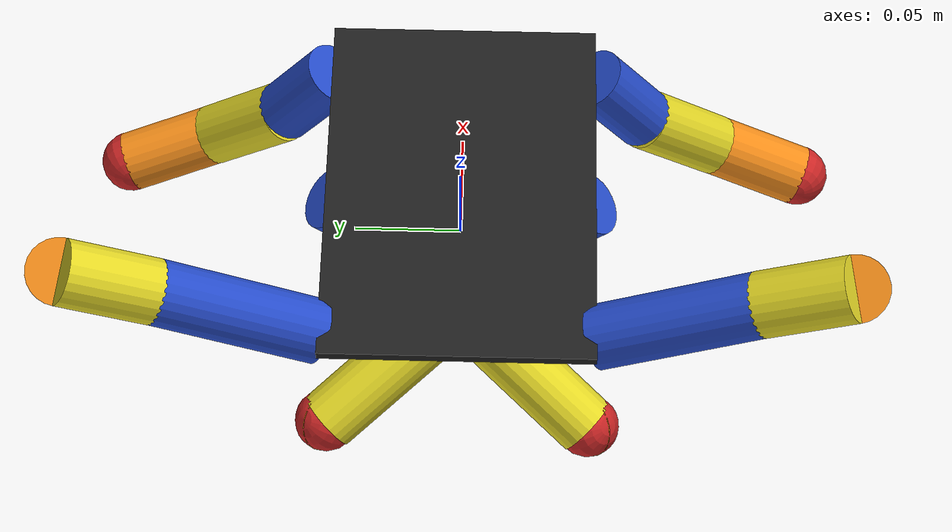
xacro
<?xml version="1.0"?>
<robot name="multi_legged_robot" xmlns:xacro="http://ros.org/wiki/xacro">

  <xacro:include filename="$(find multi_legged_description)/urdf/base/base.urdf.xacro"/>
  <xacro:include filename="$(find multi_legged_description)/urdf/leg/leg.urdf.xacro"/>
  <xacro:include filename="$(find multi_legged_description)/urdf/params/robot6.xacro"/>

  <!-- ===============  Link & Joint =============== -->
  <!-- Base -->
  <link name="base_footprint"/>
  <xacro:base parent="base_footprint"
              length="${body_length}"
              width="${body_width}"
              height="${body_height}"
              rho="${body_rho}">
  <!-- respawn point -->
	<origin xyz="0 0 ${body_height+base_clause_radius/2+LM_tibia_length+appendix_radius+0.01}"/>
  </xacro:base>

  <!-- LEG -->
  <xacro:leg prefix="LF" parent="base_link" origin_xyz="${body_length*2/5} ${body_width/2} ${-body_height/2-base_clause_radius/2}" origin_rpy="0.0 0.0 ${M_PI/2}"
             base_clause_radius="${base_clause_radius}" base_clause_length="${LF_base_clause_length}" base_clause_rpy="${LF_base_clause_rpy}" base_clause_rho="${base_clause_rho}" base_clause_torque="${base_clause_torque}" base_clause_velocity="${base_clause_velocity}"
             thigh_radius="${thigh_radius}" thigh_length="${LF_thigh_length}" thigh_rpy="${LF_thigh_rpy}" thigh_rho="${thigh_rho}" thigh_torque="${thigh_torque}" thigh_velocity="${thigh_velocity}"
             tibia_radius="${tibia_radius}" tibia_length="${LF_tibia_length}" tibia_rpy="${LF_tibia_rpy}" tibia_rho="${tibia_rho}" tibia_torque="${tibia_torque}" tibia_velocity="${tibia_velocity}"
             appendix_radius="${appendix_radius}" appendix_rho="${appendix_rho}"/>
  <xacro:leg prefix="LM" parent="base_link" origin_xyz="0.0 ${body_width/2} ${-body_height/2-base_clause_radius/2}" origin_rpy="0.0 0.0 ${M_PI/2}"
             base_clause_radius="${base_clause_radius}" base_clause_length="${LM_base_clause_length}" base_clause_rpy="${LM_base_clause_rpy}" base_clause_rho="${base_clause_rho}" base_clause_torque="${base_clause_torque}" base_clause_velocity="${base_clause_velocity}"
             thigh_radius="${thigh_radius}" thigh_length="${LM_thigh_length}" thigh_rpy="${LM_thigh_rpy}" thigh_rho="${thigh_rho}" thigh_torque="${thigh_torque}" thigh_velocity="${thigh_velocity}"
             tibia_radius="${tibia_radius}" tibia_length="${LM_tibia_length}" tibia_rpy="${LM_tibia_rpy}" tibia_rho="${tibia_rho}" tibia_torque="${tibia_torque}" tibia_velocity="${tibia_velocity}"
             appendix_radius="${appendix_radius}" appendix_rho="${appendix_rho}"/>
	<xacro:leg prefix="LH" parent="base_link" origin_xyz="${-body_length*2/5} ${body_width/2} ${-body_height/2-base_clause_radius/2}" origin_rpy="0.0 0.0 ${M_PI/2}"
             base_clause_radius="${base_clause_radius}" base_clause_length="${LH_base_clause_length}" base_clause_rpy="${LH_base_clause_rpy}" base_clause_rho="${base_clause_rho}" base_clause_torque="${base_clause_torque}" base_clause_velocity="${base_clause_velocity}"
             thigh_radius="${thigh_radius}" thigh_length="${LH_thigh_length}" thigh_rpy="${LH_thigh_rpy}" thigh_rho="${thigh_rho}" thigh_torque="${thigh_torque}" thigh_velocity="${thigh_velocity}"
             tibia_radius="${tibia_radius}" tibia_length="${LH_tibia_length}" tibia_rpy="${LH_tibia_rpy}" tibia_rho="${tibia_rho}" tibia_torque="${tibia_torque}" tibia_velocity="${tibia_velocity}"
             appendix_radius="${appendix_radius}" appendix_rho="${appendix_rho}"/>

  <xacro:leg prefix="RF" parent="base_link" origin_xyz="${body_length*2/5} ${-body_width/2} ${-body_height/2-base_clause_radius/2}" origin_rpy="0.0 0.0 ${-M_PI/2}"
             base_clause_radius="${base_clause_radius}" base_clause_length="${RF_base_clause_length}" base_clause_rpy="${RF_base_clause_rpy}" base_clause_rho="${base_clause_rho}" base_clause_torque="${base_clause_torque}" base_clause_velocity="${base_clause_velocity}"
             thigh_radius="${thigh_radius}" thigh_length="${RF_thigh_length}" thigh_rpy="${RF_thigh_rpy}" thigh_rho="${thigh_rho}" thigh_torque="${thigh_torque}" thigh_velocity="${thigh_velocity}"
             tibia_radius="${tibia_radius}" tibia_length="${RF_tibia_length}" tibia_rpy="${RF_tibia_rpy}" tibia_rho="${tibia_rho}" tibia_torque="${tibia_torque}" tibia_velocity="${tibia_velocity}"
             appendix_radius="${appendix_radius}" appendix_rho="${appendix_rho}"/>
  <xacro:leg prefix="RM" parent="base_link" origin_xyz="0.0 ${-body_width/2} ${-body_height/2-base_clause_radius/2}" origin_rpy="0.0 0.0 ${-M_PI/2}"
             base_clause_radius="${base_clause_radius}" base_clause_length="${RM_base_clause_length}" base_clause_rpy="${RM_base_clause_rpy}" base_clause_rho="${base_clause_rho}" base_clause_torque="${base_clause_torque}" base_clause_velocity="${base_clause_velocity}"
             thigh_radius="${thigh_radius}" thigh_length="${RM_thigh_length}" thigh_rpy="${RM_thigh_rpy}" thigh_rho="${thigh_rho}" thigh_torque="${thigh_torque}" thigh_velocity="${thigh_velocity}"
             tibia_radius="${tibia_radius}" tibia_length="${RM_tibia_length}" tibia_rpy="${RM_tibia_rpy}" tibia_rho="${tibia_rho}" tibia_torque="${tibia_torque}" tibia_velocity="${tibia_velocity}"
             appendix_radius="${appendix_radius}" appendix_rho="${appendix_rho}"/>
	<xacro:leg prefix="RH" parent="base_link" origin_xyz="${-body_length*2/5} ${-body_width/2} ${-body_height/2-base_clause_radius/2}" origin_rpy="0.0 0.0 ${-M_PI/2}"
             base_clause_radius="${base_clause_radius}" base_clause_length="${RH_base_clause_length}" base_clause_rpy="${RH_base_clause_rpy}" base_clause_rho="${base_clause_rho}" base_clause_torque="${base_clause_torque}" base_clause_velocity="${base_clause_velocity}"
             thigh_radius="${thigh_radius}" thigh_length="${RH_thigh_length}" thigh_rpy="${RH_thigh_rpy}" thigh_rho="${thigh_rho}" thigh_torque="${thigh_torque}" thigh_velocity="${thigh_velocity}"
             tibia_radius="${tibia_radius}" tibia_length="${RH_tibia_length}" tibia_rpy="${RH_tibia_rpy}" tibia_rho="${tibia_rho}" tibia_torque="${tibia_torque}" tibia_velocity="${tibia_velocity}"
             appendix_radius="${appendix_radius}" appendix_rho="${appendix_rho}"/>

  <!-- =============== Gazebo =============== -->
  <gazebo>
    <plugin name="gazebo_ros_control" filename="libgazebo_ros_control.so">
    </plugin>
  </gazebo>

  <!-- Base -->
  <xacro:base_gazebo/>

</robot>

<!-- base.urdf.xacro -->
<robot xmlns:xacro="http://ros.org/wiki/xacro">

  <xacro:include filename="$(find multi_legged_description)/urdf/base/base.gazebo.xacro"/>

  <xacro:macro name="base" params="parent width height length rho *joint_origin">
	<joint name="base_link_joint" type="fixed">
	  <insert_block name="joint_origin"/>
	  <parent link="${parent}"/>
	  <child link="base_link"/>
	</joint>

	<link name="base_link">
	  <visual>
        <geometry>
            <box size="${length} ${width} ${height}"/>
        </geometry>
	  </visual>
	  <collision>
        <geometry>
            <box size="${length} ${width} ${height}"/>
        </geometry>
	  </collision>
	  <inertial>
		<mass value="${rho * length * width * height}"/>
		<inertia
			ixx="${rho * length * width * height / 12.0 * (width * width + height * height)}" ixy="0.0" ixz="0.0"
			iyy="${rho * length * width * height / 12.0 * (height * height + length * length)}" iyz="0.0"
			izz="${rho * length * width * height / 12.0 * (length * length + width * width)}"/>
	  </inertial>
	</link>
  </xacro:macro>

</robot>

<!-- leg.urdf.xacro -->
<robot xmlns:xacro="http://ros.org/wiki/xacro">
  <xacro:include filename="$(find multi_legged_description)/urdf/coxa/coxa.urdf.xacro"/>
  <xacro:include filename="$(find multi_legged_description)/urdf/base_clause/base_clause.urdf.xacro"/>
  <xacro:include filename="$(find multi_legged_description)/urdf/thigh/thigh.urdf.xacro"/>
  <xacro:include filename="$(find multi_legged_description)/urdf/tibia/tibia.urdf.xacro"/>
  <xacro:include filename="$(find multi_legged_description)/urdf/appendix/appendix.urdf.xacro"/>

  <xacro:macro name="leg" params="prefix parent origin_xyz origin_rpy
                                  base_clause_radius base_clause_length base_clause_rpy base_clause_rho base_clause_torque base_clause_velocity
                                  thigh_radius thigh_length thigh_rpy thigh_rho thigh_torque thigh_velocity
                                  tibia_radius tibia_length tibia_rpy tibia_rho tibia_torque tibia_velocity
                                  appendix_radius appendix_rho">
    <!-- ===============  Link & Joint =============== -->
    <xacro:coxa prefix="${prefix}" parent="${parent}">
    <origin xyz="${origin_xyz}" rpy="${origin_rpy}"/>
    <axis xyz="0 0 1"/>
    </xacro:coxa>

    <xacro:base_clause prefix="${prefix}"
                                          radius="${base_clause_radius}"
                                          length="${base_clause_length}"
                                          rho="${base_clause_rho}"
                                          torque="${base_clause_torque}"
                                          velocity="${base_clause_velocity}">
    <origin xyz="0.0 0.0 0.0" rpy="${base_clause_rpy}"/>
    <axis xyz="0 0 1"/>
    </xacro:base_clause>

    <xacro:thigh prefix="${prefix}"
                 radius="${thigh_radius}"
                 length="${thigh_length}"
                 rho="${thigh_rho}"
                 torque="${thigh_torque}"
                 velocity="${thigh_velocity}">
    <origin xyz="${base_clause_length} 0.0 0.0" rpy="${thigh_rpy}"/>
    <axis xyz="0 0 1"/>
    </xacro:thigh>

    <xacro:tibia prefix="${prefix}"
                 radius="${tibia_radius}"
                 length="${tibia_length}"
                 rho="${tibia_rho}"
                 torque="${tibia_torque}"
                 velocity="${tibia_velocity}">
    <origin xyz="${thigh_length} 0.0 0.0" rpy="${tibia_rpy}"/>
    <axis xyz="0 0 1"/>
    </xacro:tibia>

    <xacro:appendix prefix="${prefix}"
                    radius="${appendix_radius}"
                    rho="${appendix_rho}">
    <origin xyz="${tibia_length} 0.0 0.0" rpy="0.0 0.0 0.0"/>
    <axis xyz="0 0 1"/>
    </xacro:appendix>

    <!-- ===============  Transmission =============== -->
    <xacro:coxa_trans prefix="${prefix}"/>
    <xacro:base_clause_trans prefix="${prefix}"/>
    <xacro:thigh_trans prefix="${prefix}"/>
    <xacro:tibia_trans prefix="${prefix}"/>
    <xacro:appendix_trans prefix="${prefix}"/>

    <!-- =============== Gazebo =============== -->
    <xacro:coxa_gazebo prefix="${prefix}"/>
    <xacro:base_clause_gazebo prefix="${prefix}"/>
    <xacro:thigh_gazebo prefix="${prefix}"/>
    <xacro:tibia_gazebo prefix="${prefix}"/>
    <xacro:appendix_gazebo prefix="${prefix}"/>

  </xacro:macro>
</robot>

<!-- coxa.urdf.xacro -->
<robot xmlns:xacro="http://ros.org/wiki/xacro">

  <xacro:include filename="$(find multi_legged_description)/urdf/common.xacro"/>
  <xacro:include filename="$(find multi_legged_description)/urdf/coxa/coxa.transmission.xacro"/>
  <xacro:include filename="$(find multi_legged_description)/urdf/coxa/coxa.gazebo.xacro"/>

  <xacro:macro name="coxa" params="prefix parent *joint_origin *joint_axis">
	<joint name="${prefix}_coxa_joint" type="fixed">
	  <insert_block name="joint_origin"/>
	  <parent link="${parent}"/>
	  <child link="${prefix}_coxa_link"/>
      <origin xyz="0 0 0" rpy="0 0 0"/>
      <limit lower="-0.0" upper="0.0" effort="100" velocity="100" />
	  <insert_block name="joint_axis"/>
	</joint>
	<link name="${prefix}_coxa_link">
      <visual>
        <origin xyz="0 0 0" rpy="0 ${M_PI/2} 0"/>
        <geometry>
            <cylinder radius="0.00001" length="0.00001"/>
        </geometry>
	  </visual>
	  <collision>
		<origin xyz="0 0 0" rpy="0 ${M_PI/2} 0"/>
		<geometry>
		  <cylinder radius="0.00001" length="0.00001"/>
		</geometry>
	  </collision>
	  <inertial>
		<origin xyz="0 0 0" rpy="0 ${M_PI/2} 0"/>
		<cylinder_inertial mass="0.00001"
						   radius="0.00001" length="0.00001"/>
	  </inertial>
	</link>
  </xacro:macro>

</robot>

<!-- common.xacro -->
<robot xmlns:xacro="http://ros.org/wiki/xacro">
  <property name="M_PI" value="3.14159274"/>

  <xacro:macro name="cylinder_inertial" params="mass radius length">
	<mass value="${mass}"/>
	<inertia ixx="${(radius*radius/4.0+length*length/12.0)*mass}" ixy="0" ixz="0"
			 iyy="${(radius*radius/4.0+length*length/12.0)*mass}" iyz="0"
			 izz="${(mass*radius*radius)/2.0}" />
  </xacro:macro>

  <xacro:macro name="box_inertial" params="mass height width depth">
	<mass value="${mass}"/>
	<inertia ixx="${mass*(width*width+depth*depth)/12.0}" ixy="0" ixz="0"
			 iyy="${mass*(height*height+depth*depth)/12.0}" iyz="0"
			 izz="${mass*(height*height+width*width)/12.0}" />
  </xacro:macro>
</robot>

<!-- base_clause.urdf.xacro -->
<robot xmlns:xacro="http://ros.org/wiki/xacro">

  <xacro:include filename="$(find multi_legged_description)/urdf/common.xacro"/>
  <xacro:include filename="$(find multi_legged_description)/urdf/base_clause/base_clause.transmission.xacro"/>
  <xacro:include filename="$(find multi_legged_description)/urdf/base_clause/base_clause.gazebo.xacro"/>

  <xacro:macro name="base_clause" params="prefix radius length rho torque velocity *joint_origin *joint_axis">
	<joint name="${prefix}_base_clause_joint" type="revolute">
	  <insert_block name="joint_origin"/>
	  <parent link="${prefix}_coxa_link"/>
	  <child link="${prefix}_base_clause_link"/>
      <origin xyz="0 0 0" rpy="0 0 0"/>
	  <limit lower="${-M_PI}" upper="${M_PI}" effort="${torque}" velocity="${velocity}" />
	  <insert_block name="joint_axis"/>
	</joint>

	<link name="${prefix}_base_clause_link">
	  <visual>
        <origin xyz="${length/2} 0 0" rpy="0 ${M_PI/2} 0"/>
        <geometry>
            <cylinder radius="${radius}" length="${length}"/>
        </geometry>
	  </visual>
	  <collision>
		<origin xyz="${length/2} 0 0" rpy="0 ${M_PI/2} 0"/>
		<geometry>
		  <cylinder radius="${radius}" length="${length}"/>
		</geometry>
	  </collision>
	  <inertial>
		<origin xyz="${length/2} 0 0" rpy="0 ${M_PI/2} 0"/>
		<cylinder_inertial mass="${rho * radius * radius * M_PI * length}"
						   radius="${radius}" length="${length}"/>
	  </inertial>
	</link>
  </xacro:macro>

</robot>

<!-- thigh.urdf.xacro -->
<robot xmlns:xacro="http://ros.org/wiki/xacro">

  <xacro:include filename="$(find multi_legged_description)/urdf/common.xacro"/>
  <xacro:include filename="$(find multi_legged_description)/urdf/thigh/thigh.transmission.xacro"/>
  <xacro:include filename="$(find multi_legged_description)/urdf/thigh/thigh.gazebo.xacro"/>

  <xacro:macro name="thigh" params="prefix radius length rho torque velocity *joint_origin *joint_axis">
	<joint name="${prefix}_thigh_joint" type="revolute">
	  <insert_block name="joint_origin"/>
	  <parent link="${prefix}_base_clause_link"/>
	  <child link="${prefix}_thigh_link"/>
      <origin xyz="0 0 0" rpy="0 0 0"/>
	  <limit lower="${-M_PI}" upper="${M_PI}" effort="${torque}" velocity="${velocity}" />
	  <insert_block name="joint_axis"/>
	</joint>
	<link name="${prefix}_thigh_link">
	  <visual>
        <origin xyz="${length/2} 0 0" rpy="0 ${M_PI/2} 0"/>
        <geometry>
            <cylinder radius="${radius}" length="${length}"/>
        </geometry>
	  </visual>
	  <collision>
		<origin xyz="${length/2} 0 0" rpy="0 ${M_PI/2} 0"/>
		<geometry>
		  <cylinder radius="${radius}" length="${length}"/>
		</geometry>
	  </collision>
	  <inertial>
		<origin xyz="${length/2} 0 0" rpy="0 ${M_PI/2} 0"/>
		<cylinder_inertial mass="${rho * radius * radius * M_PI * length}"
						   radius="${radius}" length="${length}"/>
	  </inertial>
	</link>
  </xacro:macro>

</robot>

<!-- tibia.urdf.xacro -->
<robot xmlns:xacro="http://ros.org/wiki/xacro">

  <xacro:include filename="$(find multi_legged_description)/urdf/common.xacro"/>
  <xacro:include filename="$(find multi_legged_description)/urdf/tibia/tibia.transmission.xacro"/>
  <xacro:include filename="$(find multi_legged_description)/urdf/tibia/tibia.gazebo.xacro"/>

  <xacro:macro name="tibia" params="prefix radius length rho torque velocity *joint_origin *joint_axis">
	<joint name="${prefix}_tibia_joint" type="revolute">
	  <insert_block name="joint_origin"/>
	  <parent link="${prefix}_thigh_link"/>
	  <child link="${prefix}_tibia_link"/>
      <origin xyz="0 0 0" rpy="0 0 0"/>
	  <limit lower="${-M_PI}" upper="${M_PI}" effort="${torque}" velocity="${velocity}" />
	  <insert_block name="joint_axis"/>
	</joint>
	<link name="${prefix}_tibia_link">
	  <visual>
        <origin xyz="${length/2} 0 0" rpy="0 ${M_PI/2} 0"/>
        <geometry>
            <cylinder radius="${radius}" length="${length}"/>
        </geometry>
	  </visual>
	  <collision>
		<origin xyz="${length/2} 0 0" rpy="0 ${M_PI/2} 0"/>
		<geometry>
		  <cylinder radius="${radius}" length="${length}"/>
		</geometry>
	  </collision>
	  <inertial>
		<origin xyz="${length/2} 0 0" rpy="0 ${M_PI/2} 0"/>
		<cylinder_inertial mass="${rho * radius * radius * M_PI * length}"
						   radius="${radius}" length="${length}"/>
	  </inertial>
	</link>
  </xacro:macro>

</robot>

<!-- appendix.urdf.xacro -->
<robot xmlns:xacro="http://ros.org/wiki/xacro">

  <xacro:include filename="$(find multi_legged_description)/urdf/common.xacro"/>
  <xacro:include filename="$(find multi_legged_description)/urdf/appendix/appendix.transmission.xacro"/>
  <xacro:include filename="$(find multi_legged_description)/urdf/appendix/appendix.gazebo.xacro"/>

  <xacro:macro name="appendix" params="prefix radius rho *joint_origin *joint_axis">
	<joint name="${prefix}_appendix_joint" type="revolute">
	  <insert_block name="joint_origin"/>
	  <parent link="${prefix}_tibia_link"/>
	  <child link="${prefix}_appendix_link"/>
      <origin xyz="0 0 0" rpy="0 0 0"/>
	  <limit lower="-0.0" upper="0.0" effort="100" velocity="100" />
	  <insert_block name="joint_axis"/>
	</joint>

	<link name="${prefix}_appendix_link">
	  <visual>
        <origin xyz="0 0 0" rpy="0 0 0"/>
        <geometry>
            <sphere radius="${radius}"/>
        </geometry>>
	  </visual>
	  <collision>
		<origin xyz="0 0 0" rpy="0 0 0"/>
		<geometry>
		  <sphere radius="${radius}"/>
		</geometry>
	  </collision>
	  <inertial>
		<origin xyz="0 0 0" rpy="0 0 0"/>
        <mass value="${rho * 0.75 * M_PI * radius * radius}"/>
		<inertia
			ixx="${0.4 * rho * 0.75 * M_PI * radius * radius * radius * radius}" ixy="0.0" ixz="0.0"
			iyy="${0.4 * rho * 0.75 * M_PI * radius * radius * radius * radius}" iyz="0.0"
			izz="${0.4 * rho * 0.75 * M_PI * radius * radius * radius * radius}"/>
      </inertial>
	</link>
  </xacro:macro>

</robot>

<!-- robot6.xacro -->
<robot xmlns:xacro="http://ros.org/wiki/xacro">
  <property name="body_length" value="0.175"/>
  <property name="body_width" value="0.125"/>
  <property name="body_height" value="0.005"/>
  <property name="body_rho" value="8283"/>
  <property name="LF_base_clause_length" value="0.0433155864323"/>
  <property name="LF_thigh_length" value="0.0550754349995"/>
  <property name="LF_tibia_length" value="0.0445181390333"/>
  <property name="RF_base_clause_length" value="0.0433155864323"/>
  <property name="RF_thigh_length" value="0.0550754349995"/>
  <property name="RF_tibia_length" value="0.0445181390333"/>
  <property name="LM_base_clause_length" value="0.0252651080083"/>
  <property name="LM_thigh_length" value="0.144421287262"/>
  <property name="LM_tibia_length" value="0.000497004004276"/>
  <property name="RM_base_clause_length" value="0.0252651080083"/>
  <property name="RM_thigh_length" value="0.144421287262"/>
  <property name="RM_tibia_length" value="0.000497004004276"/>
  <property name="LH_base_clause_length" value="0.0780794693384"/>
  <property name="LH_thigh_length" value="0.0442661013986"/>
  <property name="LH_tibia_length" value="0.0167031275359"/>
  <property name="RH_base_clause_length" value="0.0780794693384"/>
  <property name="RH_thigh_length" value="0.0442661013986"/>
  <property name="RH_tibia_length" value="0.0167031275359"/>
  <property name="base_clause_radius" value="0.015"/>
  <property name="thigh_radius" value="0.015"/>
  <property name="tibia_radius" value="0.015"/>
  <property name="appendix_radius" value="0.015"/>
  <property name="base_clause_rho" value="1240"/>
  <property name="thigh_rho" value="1240"/>
  <property name="tibia_rho" value="1240"/>
  <property name="appendix_rho" value="1240"/>
  <property name="base_clause_torque" value="3"/>
  <property name="thigh_torque" value="3"/>
  <property name="tibia_torque" value="3"/>
  <property name="base_clause_velocity" value="100"/>
  <property name="thigh_velocity" value="100"/>
  <property name="tibia_velocity" value="100"/>
  <property name="F_base_clause_roll" value="0.799595055536"/>
  <property name="F_base_clause_pitch" value="0.924371500693"/>
  <property name="F_base_clause_yaw" value="0.0"/>
  <property name="F_thigh_roll" value="-1.44384078507"/>
  <property name="F_thigh_pitch" value="-0.229717628215"/>
  <property name="F_thigh_yaw" value="0.0"/>
  <property name="F_tibia_roll" value="-0.660421160507"/>
  <property name="F_tibia_pitch" value="-0.616300564405"/>
  <property name="F_tibia_yaw" value="0.0"/>
  <property name="M_base_clause_roll" value="1.16051212431"/>
  <property name="M_base_clause_pitch" value="2.35777733348"/>
  <property name="M_base_clause_yaw" value="0.0"/>
  <property name="M_thigh_roll" value="0.437371229975"/>
  <property name="M_thigh_pitch" value="0.629141450041"/>
  <property name="M_thigh_yaw" value="0.0"/>
  <property name="M_tibia_roll" value="-1.12097277946"/>
  <property name="M_tibia_pitch" value="-1.11152042733"/>
  <property name="M_tibia_yaw" value="0.0"/>
  <property name="H_base_clause_roll" value="-0.962154876368"/>
  <property name="H_base_clause_pitch" value="-0.452740372398"/>
  <property name="H_base_clause_yaw" value="0.0"/>
  <property name="H_thigh_roll" value="0.474023074648"/>
  <property name="H_thigh_pitch" value="-0.0675768528678"/>
  <property name="H_thigh_yaw" value="0.0"/>
  <property name="H_tibia_roll" value="0.484208112037"/>
  <property name="H_tibia_pitch" value="1.88900167944"/>
  <property name="H_tibia_yaw" value="0.0"/>
  <property name="LF_base_clause_rpy" value="${F_base_clause_roll} ${F_base_clause_pitch} ${F_base_clause_yaw}"/>
  <property name="LF_thigh_rpy" value="${F_thigh_roll} ${F_thigh_pitch} ${F_thigh_yaw}"/>
  <property name="LF_tibia_rpy" value="${F_tibia_roll} ${F_tibia_pitch} ${F_tibia_yaw}"/>
  <property name="LM_base_clause_rpy" value="${M_base_clause_roll} ${M_base_clause_pitch} ${M_base_clause_yaw}"/>
  <property name="LM_thigh_rpy" value="${M_thigh_roll} ${M_thigh_pitch} ${M_thigh_yaw}"/>
  <property name="LM_tibia_rpy" value="${M_tibia_roll} ${M_tibia_pitch} ${M_tibia_yaw}"/>
  <property name="LH_base_clause_rpy" value="${H_base_clause_roll} ${H_base_clause_pitch} ${H_base_clause_yaw}"/>
  <property name="LH_thigh_rpy" value="${H_thigh_roll} ${H_thigh_pitch} ${H_thigh_yaw}"/>
  <property name="LH_tibia_rpy" value="${H_tibia_roll} ${H_tibia_pitch} ${H_tibia_yaw}"/>
  <property name="RF_base_clause_rpy" value="${-F_base_clause_roll} ${F_base_clause_pitch} ${-F_base_clause_yaw}"/>
  <property name="RF_thigh_rpy" value="${-F_thigh_roll} ${F_thigh_pitch} ${-F_thigh_yaw}"/>
  <property name="RF_tibia_rpy" value="${-F_tibia_roll} ${F_tibia_pitch} ${-F_tibia_yaw}"/>
  <property name="RM_base_clause_rpy" value="${-M_base_clause_roll} ${M_base_clause_pitch} ${-M_base_clause_yaw}"/>
  <property name="RM_thigh_rpy" value="${-M_thigh_roll} ${M_thigh_pitch} ${-M_thigh_yaw}"/>
  <property name="RM_tibia_rpy" value="${-M_tibia_roll} ${M_tibia_pitch} ${-M_tibia_yaw}"/>
  <property name="RH_base_clause_rpy" value="${-H_base_clause_roll} ${H_base_clause_pitch} ${-H_base_clause_yaw}"/>
  <property name="RH_thigh_rpy" value="${-H_thigh_roll} ${H_thigh_pitch} ${-H_thigh_yaw}"/>
  <property name="RH_tibia_rpy" value="${-H_tibia_roll} ${H_tibia_pitch} ${-H_tibia_yaw}"/>
  <property name="F_distance" value="0.1"/>
  <property name="M_distance" value="0.1"/>
  <property name="H_distance" value="0.1"/>
</robot>
